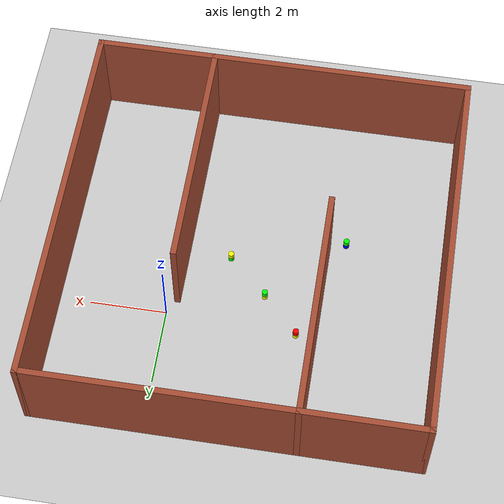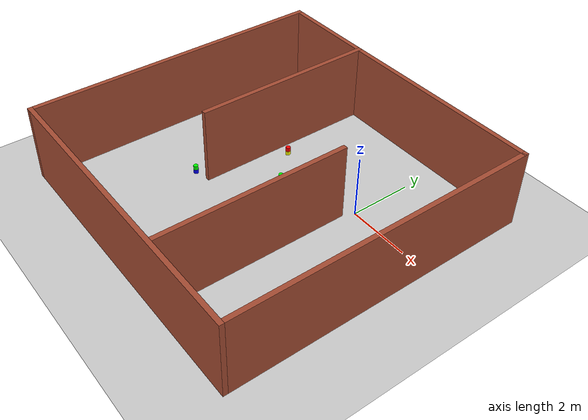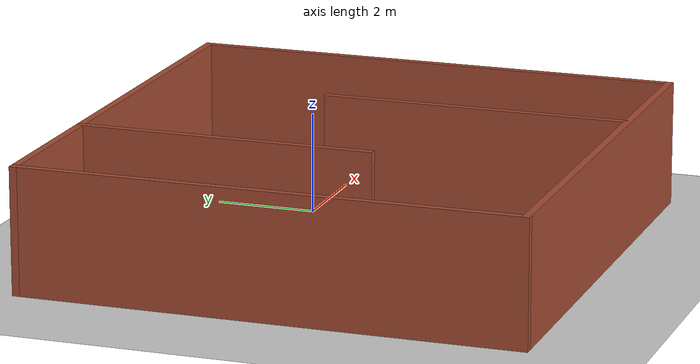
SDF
<sdf version="1.4">
  <world name="default">

    <scene>
      <ambient>0.4 0.4 0.4 1</ambient>
      <background>0.7 0.7 0.7 1</background>
      <shadows>true</shadows>
    </scene>

    <!-- A global light source -->
    <include>
      <uri>model://sun</uri>
    </include>

    <!-- A ground plane -->
    <include>
      <uri>model://ground_plane</uri>
    </include>

    <!-- My Maze -->
    <include>
      <uri>model://maze_4</uri>
	    <pose>-2.05 -1.60 0 0 0 0</pose>
    </include>

    <!-- My Beacons -->
    <include>
      <uri>model://beacon_BG</uri>
	    <pose>-4.35 -2.7 0 0 0 0</pose>
    </include>
    <include>
      <uri>model://beacon_GY</uri>
	    <pose>-1.4 -1.85 0 0 0 0</pose>
    </include>
    <include>
      <uri>model://beacon_YG</uri>
	    <pose>-2.45 -0.85 0 0 0 0</pose>
    </include>
    <include>
      <uri>model://beacon_YR</uri>
	    <pose>-3.4 0.15 0 0 0 0</pose>
    </include>

    <physics type="ode">
      <real_time_update_rate>1000.0</real_time_update_rate>
      <max_step_size>0.001</max_step_size>
      <real_time_factor>1</real_time_factor>
      <ode>
        <solver>
          <type>quick</type>
          <iters>150</iters>
          <precon_iters>0</precon_iters>
          <sor>1.400000</sor>
          <use_dynamic_moi_rescaling>1</use_dynamic_moi_rescaling>
        </solver>
        <constraints>
          <cfm>0.00001</cfm>
          <erp>0.2</erp>
          <contact_max_correcting_vel>2000.000000</contact_max_correcting_vel>
          <contact_surface_layer>0.01000</contact_surface_layer>
        </constraints>
      </ode>
    </physics>
  </world>

</sdf>

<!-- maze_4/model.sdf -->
<sdf version='1.5'>
  <model name='maze_4'>
    <pose frame=''>2.485 -1.135 0 0 -0 0</pose>
    <link name='Wall_0'>
      <collision name='Wall_0_Collision'>
        <geometry>
          <box>
            <size>10 0.15 2.5</size>
          </box>
        </geometry>
        <pose frame=''>0 0 1.25 0 -0 0</pose>
      </collision>
      <visual name='Wall_0_Visual'>
        <pose frame=''>0 0 1.25 0 -0 0</pose>
        <geometry>
          <box>
            <size>10 0.15 2.5</size>
          </box>
        </geometry>
        <material>
          <script>
            <uri>file://media/materials/scripts/gazebo.material</uri>
            <name>Gazebo/Bricks</name>
          </script>
          <ambient>1 1 1 1</ambient>
        </material>
      </visual>
      <pose frame=''>-4.925 -0 0 0 0 -1.5708</pose>
    </link>
    <link name='Wall_10'>
      <collision name='Wall_10_Collision'>
        <geometry>
          <box>
            <size>6.25 0.15 2.5</size>
          </box>
        </geometry>
        <pose frame=''>0 0 1.25 0 -0 0</pose>
      </collision>
      <visual name='Wall_10_Visual'>
        <pose frame=''>0 0 1.25 0 -0 0</pose>
        <geometry>
          <box>
            <size>6.25 0.15 2.5</size>
          </box>
        </geometry>
        <material>
          <script>
            <uri>file://media/materials/scripts/gazebo.material</uri>
            <name>Gazebo/Bricks</name>
          </script>
          <ambient>1 1 1 1</ambient>
        </material>
      </visual>
      <pose frame=''>1.825 -1.875 0 0 -0 1.5708</pose>
    </link>
    <link name='Wall_2'>
      <collision name='Wall_2_Collision'>
        <geometry>
          <box>
            <size>10 0.15 2.5</size>
          </box>
        </geometry>
        <pose frame=''>0 0 1.25 0 -0 0</pose>
      </collision>
      <visual name='Wall_2_Visual'>
        <pose frame=''>0 0 1.25 0 -0 0</pose>
        <geometry>
          <box>
            <size>10 0.15 2.5</size>
          </box>
        </geometry>
        <material>
          <script>
            <uri>file://media/materials/scripts/gazebo.material</uri>
            <name>Gazebo/Bricks</name>
          </script>
          <ambient>1 1 1 1</ambient>
        </material>
      </visual>
      <pose frame=''>-0 4.925 0 0 -0 0</pose>
    </link>
    <link name='Wall_3'>
      <collision name='Wall_3_Collision'>
        <geometry>
          <box>
            <size>10 0.15 2.5</size>
          </box>
        </geometry>
        <pose frame=''>0 0 1.25 0 -0 0</pose>
      </collision>
      <visual name='Wall_3_Visual'>
        <pose frame=''>0 0 1.25 0 -0 0</pose>
        <geometry>
          <box>
            <size>10 0.15 2.5</size>
          </box>
        </geometry>
        <material>
          <script>
            <uri>file://media/materials/scripts/gazebo.material</uri>
            <name>Gazebo/Bricks</name>
          </script>
          <ambient>1 1 1 1</ambient>
        </material>
      </visual>
      <pose frame=''>4.925 -0 0 0 0 -1.5708</pose>
    </link>
    <link name='Wall_4'>
      <collision name='Wall_4_Collision'>
        <geometry>
          <box>
            <size>10 0.15 2.5</size>
          </box>
        </geometry>
        <pose frame=''>0 0 1.25 0 -0 0</pose>
      </collision>
      <visual name='Wall_4_Visual'>
        <pose frame=''>0 0 1.25 0 -0 0</pose>
        <geometry>
          <box>
            <size>10 0.15 2.5</size>
          </box>
        </geometry>
        <material>
          <script>
            <uri>file://media/materials/scripts/gazebo.material</uri>
            <name>Gazebo/Bricks</name>
          </script>
          <ambient>1 1 1 1</ambient>
        </material>
      </visual>
      <pose frame=''>-0 -4.925 0 0 -0 3.14159</pose>
    </link>
    <link name='Wall_7'>
      <collision name='Wall_7_Collision'>
        <geometry>
          <box>
            <size>6 0.15 2.5</size>
          </box>
        </geometry>
        <pose frame=''>0 0 1.25 0 -0 0</pose>
      </collision>
      <visual name='Wall_7_Visual'>
        <pose frame=''>0 0 1.25 0 -0 0</pose>
        <geometry>
          <box>
            <size>6 0.15 2.5</size>
          </box>
        </geometry>
        <material>
          <script>
            <uri>file://media/materials/scripts/gazebo.material</uri>
            <name>Gazebo/Bricks</name>
          </script>
          <ambient>1 1 1 1</ambient>
        </material>
      </visual>
      <pose frame=''>-1.825 2 0 0 0 -1.5708</pose>
    </link>
    <static>1</static>
  </model>
</sdf>

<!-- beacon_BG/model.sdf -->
<sdf version='1.4'>
  <model name="beacon_BG">
	<static>true</static>
          <link name='chassis_lower'>
            <pose>0 0 0.07 0 0 0</pose>

            <collision name='collision'>
              <geometry>
                <cylinder>
                  <radius>.075</radius>
		  <length>.140</length>
                </cylinder>
              </geometry>
            </collision>

            <visual name='visual'>
              <geometry>
                <cylinder>
                  <radius>.075</radius>
		  <length>.140</length>
                </cylinder>
              </geometry>
        	<material>
          	  <ambient>0 0 1 1</ambient>
          	  <diffuse>0 0 1 1</diffuse>
          	  <specular>0.1 0.1 0.1 1</specular>
         	  <emissive>0 0 0 0</emissive>
        	</material>
            </visual>
          </link>

          <link name='chassis_upper'>
            <pose>0 0 0.21 0 0 0</pose>

            <collision name='collision'>
              <geometry>
                <cylinder>
                  <radius>.075</radius>
		  <length>.140</length>
                </cylinder>
              </geometry>
            </collision>

            <visual name='visual'>
              <geometry>
                <cylinder>
                  <radius>.075</radius>
		  <length>.140</length>
                </cylinder>
              </geometry>
        	<material>
          	  <ambient>0 1 0 1</ambient>
          	  <diffuse>0 1 0 1</diffuse>
          	  <specular>0.1 0.1 0.1 1</specular>
         	  <emissive>0 0 0 0</emissive>
        	</material>
            </visual>
          </link>

  </model>
</sdf>

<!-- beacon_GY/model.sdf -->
<sdf version='1.4'>
  <model name="beacon_GY">
	<static>true</static>
          <link name='chassis_lower'>
            <pose>0 0 0.07 0 0 0</pose>

            <collision name='collision'>
              <geometry>
                <cylinder>
                  <radius>.075</radius>
		  <length>.140</length>
                </cylinder>
              </geometry>
            </collision>

            <visual name='visual'>
              <geometry>
                <cylinder>
                  <radius>.075</radius>
		  <length>.140</length>
                </cylinder>
              </geometry>
        	<material>
          	  <ambient>0 1 0 1</ambient>
          	  <diffuse>0 1 0 1</diffuse>
          	  <specular>0.1 0.1 0.1 1</specular>
         	  <emissive>0 0 0 0</emissive>
        	</material>
            </visual>
          </link>

          <link name='chassis_upper'>
            <pose>0 0 0.21 0 0 0</pose>

            <collision name='collision'>
              <geometry>
                <cylinder>
                  <radius>.075</radius>
		  <length>.140</length>
                </cylinder>
              </geometry>
            </collision>

            <visual name='visual'>
              <geometry>
                <cylinder>
                  <radius>.075</radius>
		  <length>.140</length>
                </cylinder>
              </geometry>
        	<material>
          	  <ambient>1 1 0 1</ambient>
          	  <diffuse>1 1 0 1</diffuse>
          	  <specular>0.1 0.1 0.1 1</specular>
         	  <emissive>0 0 0 0</emissive>
        	</material>
            </visual>
          </link>

  </model>
</sdf>

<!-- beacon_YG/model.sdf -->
<sdf version='1.4'>
  <model name="beacon_YG">
	<static>true</static>
          <link name='chassis_lower'>
            <pose>0 0 0.07 0 0 0</pose>

            <collision name='collision'>
              <geometry>
                <cylinder>
                  <radius>.075</radius>
		  <length>.140</length>
                </cylinder>
              </geometry>
            </collision>

            <visual name='visual'>
              <geometry>
                <cylinder>
                  <radius>.075</radius>
		  <length>.140</length>
                </cylinder>
              </geometry>
        	<material>
          	  <ambient>1 1 0 1</ambient>
          	  <diffuse>1 1 0 1</diffuse>
          	  <specular>0.1 0.1 0.1 1</specular>
         	  <emissive>0 0 0 0</emissive>
        	</material>
            </visual>
          </link>

          <link name='chassis_upper'>
            <pose>0 0 0.21 0 0 0</pose>

            <collision name='collision'>
              <geometry>
                <cylinder>
                  <radius>.075</radius>
		  <length>.140</length>
                </cylinder>
              </geometry>
            </collision>

            <visual name='visual'>
              <geometry>
                <cylinder>
                  <radius>.075</radius>
		  <length>.140</length>
                </cylinder>
              </geometry>
        	<material>
          	  <ambient>0 1 0 1</ambient>
          	  <diffuse>0 1 0 1</diffuse>
          	  <specular>0.1 0.1 0.1 1</specular>
         	  <emissive>0 0 0 0</emissive>
        	</material>
            </visual>
          </link>

  </model>
</sdf>

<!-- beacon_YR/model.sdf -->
<sdf version='1.4'>
  <model name="beacon_YR">
	<static>true</static>
          <link name='chassis_lower'>
            <pose>0 0 0.07 0 0 0</pose>

            <collision name='collision'>
              <geometry>
                <cylinder>
                  <radius>.075</radius>
		  <length>.140</length>
                </cylinder>
              </geometry>
            </collision>

            <visual name='visual'>
              <geometry>
                <cylinder>
                  <radius>.075</radius>
		  <length>.140</length>
                </cylinder>
              </geometry>
        	<material>
          	  <ambient>1 1 0 1</ambient>
          	  <diffuse>1 1 0 1</diffuse>
          	  <specular>0.1 0.1 0.1 1</specular>
         	  <emissive>0 0 0 0</emissive>
        	</material>
            </visual>
          </link>

          <link name='chassis_upper'>
            <pose>0 0 0.21 0 0 0</pose>

            <collision name='collision'>
              <geometry>
                <cylinder>
                  <radius>.075</radius>
		  <length>.140</length>
                </cylinder>
              </geometry>
            </collision>

            <visual name='visual'>
              <geometry>
                <cylinder>
                  <radius>.075</radius>
		  <length>.140</length>
                </cylinder>
              </geometry>
        	<material>
          	  <ambient>1 0 0 1</ambient>
          	  <diffuse>1 0 0 1</diffuse>
          	  <specular>0.1 0.1 0.1 1</specular>
         	  <emissive>0 0 0 0</emissive>
        	</material>
            </visual>
          </link>

  </model>
</sdf>
